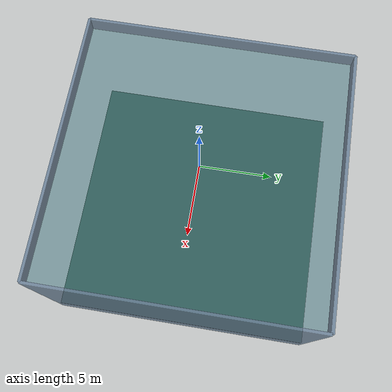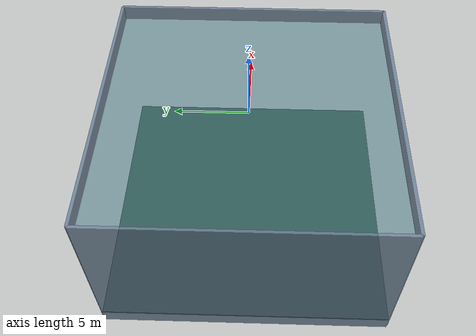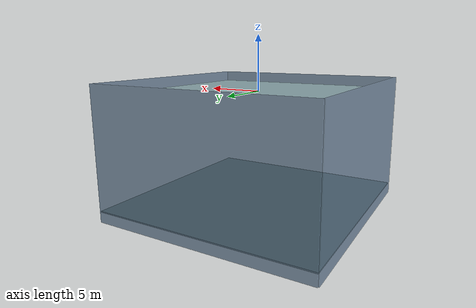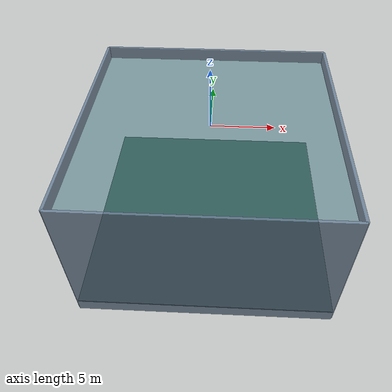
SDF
<sdf version="1.8">
 <world name="underwater_pool">
  <physics name="1ms" type="ode">
   <max_step_size>0.001</max_step_size>
   <real_time_factor>1.0</real_time_factor>
   <ode>
    <solver><type>quick</type><iters>50</iters><sor>1.3</sor></solver>
    <constraints>
     <cfm>0.0</cfm>
     <erp>0.2</erp>
     <contact_max_correcting_vel>0.1</contact_max_correcting_vel>
     <contact_surface_layer>0.001</contact_surface_layer>
    </constraints>
   </ode>
  </physics>
  <plugin filename="ignition-gazebo-physics-system" name="ignition::gazebo::systems::Physics"/>
  <plugin filename="ignition-gazebo-user-commands-system" name="ignition::gazebo::systems::UserCommands"/>
  <plugin filename="ignition-gazebo-scene-broadcaster-system" name="ignition::gazebo::systems::SceneBroadcaster"/>
  <plugin filename="ignition-gazebo-contact-system" name="ignition::gazebo::systems::Contact"/>
  <plugin filename="ignition-gazebo-buoyancy-system" name="ignition::gazebo::systems::Buoyancy">
   <graded_buoyancy>
    <default_density>1025</default_density>
    <density_change><above_depth>0</above_depth><density>1.2</density></density_change>
   </graded_buoyancy>
  </plugin>
  <plugin filename="ignition-gazebo-imu-system" name="ignition::gazebo::systems::Imu"/>
  <plugin filename="ignition-gazebo-sensors-system" name="ignition::gazebo::systems::Sensors">
   <render_engine>ogre2</render_engine>
  </plugin>
  <plugin filename="ignition-gazebo-apply-link-wrench-system" name="ignition::gazebo::systems::ApplyLinkWrench"/>
  <gravity>0 0 -9.81</gravity>
  <scene><ambient>0.1 0.2 0.3 1.0</ambient><background>0.0 0.2 0.4 1.0</background><grid>false</grid></scene>
  <light type="directional" name="sun">
   <pose>0 0 10 0 0 0</pose>
   <diffuse>0.5 0.6 0.7 1</diffuse>
   <specular>0.3 0.3 0.4 1</specular>
   <attenuation>
    <range>1000</range>
    <constant>0.9</constant>
    <linear>0.01</linear>
    <quadratic>0.001</quadratic>
   </attenuation>
   <direction>-0.5 0.1 -0.9</direction>
  </light>
  <model name="pool_floor">
   <static>true</static>
   <pose>0 0 -10.05 0 0 0</pose>
   <link name="floor">
    <collision name="collision">
     <geometry><box><size>20 20 0.1</size></box></geometry>
     <surface>
      <contact><ode><kp>500000</kp><kd>200</kd><max_vel>0.5</max_vel><min_depth>0.001</min_depth></ode></contact>
      <friction><ode><mu>0.1</mu><mu2>0.1</mu2></ode></friction>
     </surface>
    </collision>
    <visual name="visual">
     <geometry><box><size>20 20 0.1</size></box></geometry>
     <material>
      <ambient>0.2 0.3 0.25 1</ambient>
      <diffuse>0.3 0.4 0.35 1</diffuse>
      <specular>0.1 0.1 0.1 1</specular>
     </material>
    </visual>
   </link>
  </model>
  <model name="pool_wall_north">
   <static>true</static>
   <pose>0 10 -5 0 0 0</pose>
   <link name="wall">
    <collision name="collision">
     <geometry><box><size>20 0.2 12</size></box></geometry>
     <surface>
      <contact><ode><kp>500000</kp><kd>200</kd><max_vel>0.5</max_vel><min_depth>0.001</min_depth></ode></contact>
      <friction><ode><mu>0.1</mu><mu2>0.1</mu2></ode></friction>
     </surface>
    </collision>
    <visual name="visual">
     <geometry><box><size>20 0.2 12</size></box></geometry>
     <material><ambient>0.3 0.4 0.5 0.8</ambient><diffuse>0.4 0.5 0.6 0.8</diffuse></material>
    </visual>
   </link>
  </model>
  <model name="pool_wall_south">
   <static>true</static>
   <pose>0 -10 -5 0 0 0</pose>
   <link name="wall">
    <collision name="collision">
     <geometry><box><size>20 0.2 12</size></box></geometry>
     <surface>
      <contact><ode><kp>500000</kp><kd>200</kd><max_vel>0.5</max_vel><min_depth>0.001</min_depth></ode></contact>
      <friction><ode><mu>0.1</mu><mu2>0.1</mu2></ode></friction>
     </surface>
    </collision>
    <visual name="visual">
     <geometry><box><size>20 0.2 12</size></box></geometry>
     <material><ambient>0.3 0.4 0.5 0.8</ambient><diffuse>0.4 0.5 0.6 0.8</diffuse></material>
    </visual>
   </link>
  </model>
  <model name="pool_wall_east">
   <static>true</static>
   <pose>10 0 -5 0 0 0</pose>
   <link name="wall">
    <collision name="collision">
     <geometry><box><size>0.2 20 12</size></box></geometry>
     <surface>
      <contact><ode><kp>500000</kp><kd>200</kd><max_vel>0.5</max_vel><min_depth>0.001</min_depth></ode></contact>
      <friction><ode><mu>0.1</mu><mu2>0.1</mu2></ode></friction>
     </surface>
    </collision>
    <visual name="visual">
     <geometry><box><size>0.2 20 12</size></box></geometry>
     <material><ambient>0.3 0.4 0.5 0.8</ambient><diffuse>0.4 0.5 0.6 0.8</diffuse></material>
    </visual>
   </link>
  </model>
  <model name="pool_wall_west">
   <static>true</static>
   <pose>-10 0 -5 0 0 0</pose>
   <link name="wall">
    <collision name="collision">
     <geometry><box><size>0.2 20 12</size></box></geometry>
     <surface>
      <contact><ode><kp>500000</kp><kd>200</kd><max_vel>0.5</max_vel><min_depth>0.001</min_depth></ode></contact>
      <friction><ode><mu>0.1</mu><mu2>0.1</mu2></ode></friction>
     </surface>
    </collision>
    <visual name="visual">
     <geometry><box><size>0.2 20 12</size></box></geometry>
     <material><ambient>0.3 0.4 0.5 0.8</ambient><diffuse>0.4 0.5 0.6 0.8</diffuse></material>
    </visual>
   </link>
  </model>
  <model name="water_surface">
   <static>true</static>
   <pose>0 0 0.3 0 0 0</pose>
   <link name="surface">
    <collision name="collision">
     <geometry><box><size>20 20 0.1</size></box></geometry>
     <surface>
      <contact><ode><kp>500000</kp><kd>200</kd><max_vel>0.1</max_vel><min_depth>0.001</min_depth></ode></contact>
      <friction><ode><mu>0.0</mu><mu2>0.0</mu2></ode></friction>
     </surface>
    </collision>
   </link>
  </model>
  <model name="water_tint">
   <static>true</static>
   <pose>0 0 -5 0 0 0</pose>
   <link name="volume">
    <visual name="visual">
     <cast_shadows>false</cast_shadows>
     <transparency>0.62</transparency>
     <geometry><box><size>19.74 19.74 9.94</size></box></geometry>
     <material>
      <double_sided>true</double_sided>
      <lighting>false</lighting>
      <ambient>0.05 0.34 0.40 1</ambient>
      <diffuse>0.05 0.34 0.40 1</diffuse>
      <specular>0 0 0 1</specular>
     </material>
    </visual>
   </link>
  </model>
 </world>
</sdf>
